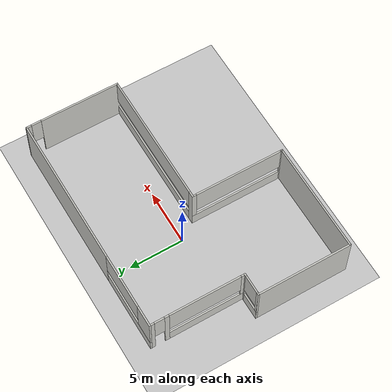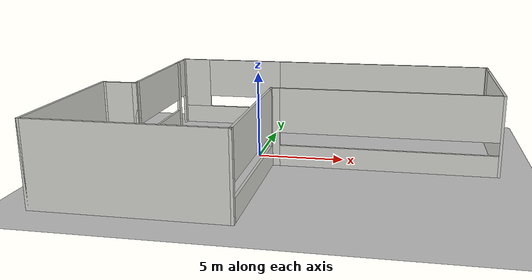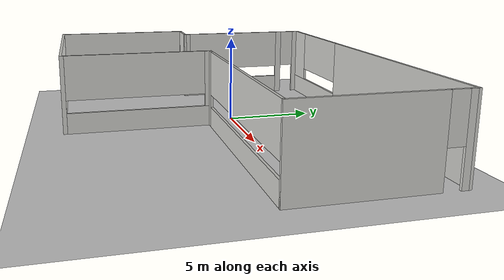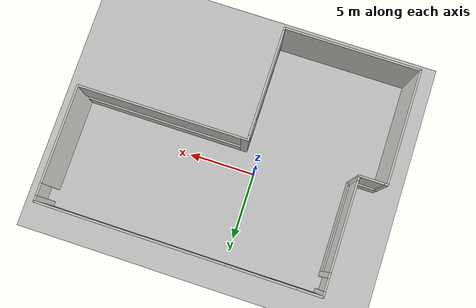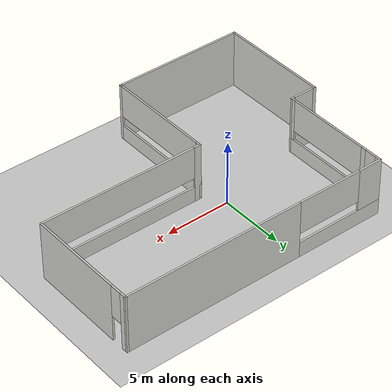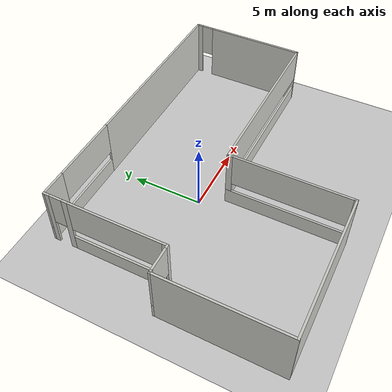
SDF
<sdf version="1.7">
 <world name="default">
  <light name="sun" type="directional">
   <pose>0 0 10 0 -0 0</pose>
   <diffuse>0.8 0.8 0.8 1</diffuse>
   <specular>0.2 0.2 0.2 1</specular>
   <attenuation>
    <range>1000</range>
    <constant>0.9</constant>
    <linear>0.01</linear>
    <quadratic>0.001</quadratic>
   </attenuation>
   <direction>-0.5 0.1 -0.9</direction>
   <spot><inner_angle>0</inner_angle><outer_angle>0</outer_angle><falloff>0</falloff></spot>
  </light>
  <model name="ground_plane">
   <static>1</static>
   <link name="link">
    <collision name="collision">
     <geometry><plane><normal>0 0 1</normal><size>100 100</size></plane></geometry>
     <surface>
      <contact><collide_bitmask>65535</collide_bitmask></contact>
      <friction><ode><mu>100</mu><mu2>50</mu2></ode></friction>
     </surface>
    </collision>
    <visual name="visual">
     <cast_shadows>0</cast_shadows>
     <geometry><plane><normal>0 0 1</normal><size>100 100</size></plane></geometry>
     <material>
      <script><uri>file://media/materials/scripts/gazebo.material</uri><name>Gazebo/Grey</name></script>
     </material>
    </visual>
   </link>
  </model>
  <gravity>0 0 -9.8</gravity>
  <magnetic_field>6e-06 2.3e-05 -4.2e-05</magnetic_field>
  <atmosphere type="adiabatic"/>
  <physics type="ode">
   <max_step_size>0.001</max_step_size>
   <real_time_factor>1</real_time_factor>
   <real_time_update_rate>1000</real_time_update_rate>
  </physics>
  <scene><ambient>0.4 0.4 0.4 1</ambient><background>0.7 0.7 0.7 1</background><shadows>1</shadows></scene>
  <spherical_coordinates>
   <surface_model>EARTH_WGS84</surface_model>
   <latitude_deg>0</latitude_deg>
   <longitude_deg>0</longitude_deg>
   <elevation>0</elevation>
   <heading_deg>0</heading_deg>
  </spherical_coordinates>
  <model name="FAV3">
   <pose>2.33369 -1.55066 0 0 -0 0</pose>
   <link name="Wall_0">
    <pose>5 -0.025 0 0 -0 0</pose>
    <visual name="Wall_0_Visual_0">
     <pose>-6.04835 0 2.25 0 -0 0</pose>
     <geometry><box><size>0.553301 0.15 4.5</size></box></geometry>
     <material>
      <script><uri>file://media/materials/scripts/gazebo.material</uri><name>Gazebo/CeilingTiled</name></script>
      <ambient>0.0823529 0.45098 1 1</ambient>
     </material>
     <meta><layer>0</layer></meta>
    </visual>
    <collision name="Wall_0_Collision_0">
     <geometry><box><size>0.553301 0.15 4.5</size></box></geometry>
     <pose>-6.04835 0 2.25 0 -0 0</pose>
    </collision>
    <visual name="Wall_0_Visual_1">
     <pose>0.27665 0 0.6 0 -0 0</pose>
     <geometry><box><size>12.0967 0.15 1.2</size></box></geometry>
     <material>
      <script><uri>file://media/materials/scripts/gazebo.material</uri><name>Gazebo/CeilingTiled</name></script>
      <ambient>0.0823529 0.45098 1 1</ambient>
     </material>
     <meta><layer>0</layer></meta>
    </visual>
    <collision name="Wall_0_Collision_1">
     <geometry><box><size>12.0967 0.15 1.2</size></box></geometry>
     <pose>0.27665 0 0.6 0 -0 0</pose>
    </collision>
    <visual name="Wall_0_Visual_2">
     <pose>6.27665 0 2.85 0 -0 0</pose>
     <geometry><box><size>0.096699 0.15 3.3</size></box></geometry>
     <material>
      <script><uri>file://media/materials/scripts/gazebo.material</uri><name>Gazebo/CeilingTiled</name></script>
      <ambient>0.0823529 0.45098 1 1</ambient>
     </material>
     <meta><layer>0</layer></meta>
    </visual>
    <collision name="Wall_0_Collision_2">
     <geometry><box><size>0.096699 0.15 3.3</size></box></geometry>
     <pose>6.27665 0 2.85 0 -0 0</pose>
    </collision>
    <visual name="Wall_0_Visual_3">
     <pose>0.228301 0 3.225 0 -0 0</pose>
     <geometry><box><size>12 0.15 2.55</size></box></geometry>
     <material>
      <script><uri>file://media/materials/scripts/gazebo.material</uri><name>Gazebo/CeilingTiled</name></script>
      <ambient>0.0823529 0.45098 1 1</ambient>
     </material>
     <meta><layer>0</layer></meta>
    </visual>
    <collision name="Wall_0_Collision_3">
     <geometry><box><size>12 0.15 2.55</size></box></geometry>
     <pose>0.228301 0 3.225 0 -0 0</pose>
    </collision>
   </link>
   <link name="Wall_1">
    <pose>11.25 4.25 0 0 -0 1.5708</pose>
    <visual name="Wall_1_Visual_0">
     <pose>-0.703876 0 2.25 0 -0 0</pose>
     <geometry><box><size>7.29225 0.15 4.5</size></box></geometry>
     <material>
      <script><uri>file://media/materials/scripts/gazebo.material</uri><name>Gazebo/CeilingTiled</name></script>
      <ambient>0.0823529 0.45098 1 1</ambient>
     </material>
     <meta><layer>0</layer></meta>
    </visual>
    <collision name="Wall_1_Collision_0">
     <geometry><box><size>7.29225 0.15 4.5</size></box></geometry>
     <pose>-0.703876 0 2.25 0 -0 0</pose>
    </collision>
    <visual name="Wall_1_Visual_1">
     <pose>4.09612 0 2.25 0 -0 0</pose>
     <geometry><box><size>0.507752 0.15 4.5</size></box></geometry>
     <material>
      <script><uri>file://media/materials/scripts/gazebo.material</uri><name>Gazebo/CeilingTiled</name></script>
      <ambient>0.0823529 0.45098 1 1</ambient>
     </material>
     <meta><layer>0</layer></meta>
    </visual>
    <collision name="Wall_1_Collision_1">
     <geometry><box><size>0.507752 0.15 4.5</size></box></geometry>
     <pose>4.09612 0 2.25 0 -0 0</pose>
    </collision>
    <visual name="Wall_1_Visual_2">
     <pose>3.39225 0 3.25 0 -0 0</pose>
     <geometry><box><size>0.9 0.15 2.5</size></box></geometry>
     <material>
      <script><uri>file://media/materials/scripts/gazebo.material</uri><name>Gazebo/CeilingTiled</name></script>
      <ambient>0.0823529 0.45098 1 1</ambient>
     </material>
     <meta><layer>0</layer></meta>
    </visual>
    <collision name="Wall_1_Collision_2">
     <geometry><box><size>0.9 0.15 2.5</size></box></geometry>
     <pose>3.39225 0 3.25 0 -0 0</pose>
    </collision>
   </link>
   <link name="Wall_10">
    <collision name="Wall_10_Collision">
     <geometry><box><size>10.15 0.15 4.5</size></box></geometry>
     <pose>0 0 2.25 0 -0 0</pose>
    </collision>
    <visual name="Wall_10_Visual">
     <pose>0 0 2.25 0 -0 0</pose>
     <geometry><box><size>10.15 0.15 4.5</size></box></geometry>
     <material>
      <script><uri>file://media/materials/scripts/gazebo.material</uri><name>Gazebo/CeilingTiled</name></script>
      <ambient>0.0823529 0.45098 1 1</ambient>
     </material>
     <meta><layer>0</layer></meta>
    </visual>
    <pose>-6.25 -8.525 0 0 -0 0</pose>
   </link>
   <link name="Wall_2">
    <pose>1 8.525 0 0 -0 3.14159</pose>
    <visual name="Wall_2_Visual_0">
     <pose>-3.44839 0 2.25 0 -0 0</pose>
     <geometry><box><size>13.7532 0.15 4.5</size></box></geometry>
     <material>
      <script><uri>file://media/materials/scripts/gazebo.material</uri><name>Gazebo/CeilingTiled</name></script>
      <ambient>0.0823529 0.45098 1 1</ambient>
     </material>
     <meta><layer>0</layer></meta>
    </visual>
    <collision name="Wall_2_Collision_0">
     <geometry><box><size>13.7532 0.15 4.5</size></box></geometry>
     <pose>-3.44839 0 2.25 0 -0 0</pose>
    </collision>
    <visual name="Wall_2_Visual_1">
     <pose>6.87661 0 0.6 0 -0 0</pose>
     <geometry><box><size>6.89678 0.15 1.2</size></box></geometry>
     <material>
      <script><uri>file://media/materials/scripts/gazebo.material</uri><name>Gazebo/CeilingTiled</name></script>
      <ambient>0.0823529 0.45098 1 1</ambient>
     </material>
     <meta><layer>0</layer></meta>
    </visual>
    <collision name="Wall_2_Collision_1">
     <geometry><box><size>6.89678 0.15 1.2</size></box></geometry>
     <pose>6.87661 0 0.6 0 -0 0</pose>
    </collision>
    <visual name="Wall_2_Visual_2">
     <pose>9.37661 0 2.85 0 -0 0</pose>
     <geometry><box><size>1.89678 0.15 3.3</size></box></geometry>
     <material>
      <script><uri>file://media/materials/scripts/gazebo.material</uri><name>Gazebo/CeilingTiled</name></script>
      <ambient>0.0823529 0.45098 1 1</ambient>
     </material>
     <meta><layer>0</layer></meta>
    </visual>
    <collision name="Wall_2_Collision_2">
     <geometry><box><size>1.89678 0.15 3.3</size></box></geometry>
     <pose>9.37661 0 2.85 0 -0 0</pose>
    </collision>
    <visual name="Wall_2_Visual_3">
     <pose>5.92822 0 3.225 0 -0 0</pose>
     <geometry><box><size>5 0.15 2.55</size></box></geometry>
     <material>
      <script><uri>file://media/materials/scripts/gazebo.material</uri><name>Gazebo/CeilingTiled</name></script>
      <ambient>0.0823529 0.45098 1 1</ambient>
     </material>
     <meta><layer>0</layer></meta>
    </visual>
    <collision name="Wall_2_Collision_3">
     <geometry><box><size>5 0.15 2.55</size></box></geometry>
     <pose>5.92822 0 3.225 0 -0 0</pose>
    </collision>
   </link>
   <link name="Wall_3">
    <pose>-9.25 4.25 0 0 -0 -1.5708</pose>
    <visual name="Wall_3_Visual_0">
     <pose>-4.11351 0 2.25 0 -0 0</pose>
     <geometry><box><size>0.472969 0.15 4.5</size></box></geometry>
     <material>
      <script><uri>file://media/materials/scripts/gazebo.material</uri><name>Gazebo/CeilingTiled</name></script>
      <ambient>0.0823529 0.45098 1 1</ambient>
     </material>
     <meta><layer>0</layer></meta>
    </visual>
    <collision name="Wall_3_Collision_0">
     <geometry><box><size>0.472969 0.15 4.5</size></box></geometry>
     <pose>-4.11351 0 2.25 0 -0 0</pose>
    </collision>
    <visual name="Wall_3_Visual_1">
     <pose>-2.77486 0 2.25 0 -0 0</pose>
     <geometry><box><size>0.404348 0.15 4.5</size></box></geometry>
     <material>
      <script><uri>file://media/materials/scripts/gazebo.material</uri><name>Gazebo/CeilingTiled</name></script>
      <ambient>0.0823529 0.45098 1 1</ambient>
     </material>
     <meta><layer>0</layer></meta>
    </visual>
    <collision name="Wall_3_Collision_1">
     <geometry><box><size>0.404348 0.15 4.5</size></box></geometry>
     <pose>-2.77486 0 2.25 0 -0 0</pose>
    </collision>
    <visual name="Wall_3_Visual_2">
     <pose>0.888659 0 0.6 0 -0 0</pose>
     <geometry><box><size>6.92268 0.15 1.2</size></box></geometry>
     <material>
      <script><uri>file://media/materials/scripts/gazebo.material</uri><name>Gazebo/CeilingTiled</name></script>
      <ambient>0.0823529 0.45098 1 1</ambient>
     </material>
     <meta><layer>0</layer></meta>
    </visual>
    <collision name="Wall_3_Collision_2">
     <geometry><box><size>6.92268 0.15 1.2</size></box></geometry>
     <pose>0.888659 0 0.6 0 -0 0</pose>
    </collision>
    <visual name="Wall_3_Visual_3">
     <pose>4.13866 0 2.85 0 -0 0</pose>
     <geometry><box><size>0.422683 0.15 3.3</size></box></geometry>
     <material>
      <script><uri>file://media/materials/scripts/gazebo.material</uri><name>Gazebo/CeilingTiled</name></script>
      <ambient>0.0823529 0.45098 1 1</ambient>
     </material>
     <meta><layer>0</layer></meta>
    </visual>
    <collision name="Wall_3_Collision_3">
     <geometry><box><size>0.422683 0.15 3.3</size></box></geometry>
     <pose>4.13866 0 2.85 0 -0 0</pose>
    </collision>
    <visual name="Wall_3_Visual_4">
     <pose>0.677317 0 3.225 0 -0 0</pose>
     <geometry><box><size>6.5 0.15 2.55</size></box></geometry>
     <material>
      <script><uri>file://media/materials/scripts/gazebo.material</uri><name>Gazebo/CeilingTiled</name></script>
      <ambient>0.0823529 0.45098 1 1</ambient>
     </material>
     <meta><layer>0</layer></meta>
    </visual>
    <collision name="Wall_3_Collision_4">
     <geometry><box><size>6.5 0.15 2.55</size></box></geometry>
     <pose>0.677317 0 3.225 0 -0 0</pose>
    </collision>
    <visual name="Wall_3_Visual_5">
     <pose>-3.42703 0 3.25 0 -0 0</pose>
     <geometry><box><size>0.9 0.15 2.5</size></box></geometry>
     <material>
      <script><uri>file://media/materials/scripts/gazebo.material</uri><name>Gazebo/CeilingTiled</name></script>
      <ambient>0.0823529 0.45098 1 1</ambient>
     </material>
     <meta><layer>0</layer></meta>
    </visual>
    <collision name="Wall_3_Collision_5">
     <geometry><box><size>0.9 0.15 2.5</size></box></geometry>
     <pose>-3.42703 0 3.25 0 -0 0</pose>
    </collision>
   </link>
   <link name="Wall_4">
    <pose>-10.25 -0.025 0 0 -0 3.14159</pose>
    <visual name="Wall_4_Visual_0">
     <pose>-0.93752 0 2.25 0 -0 0</pose>
     <geometry><box><size>0.27496 0.15 4.5</size></box></geometry>
     <material>
      <script><uri>file://media/materials/scripts/gazebo.material</uri><name>Gazebo/CeilingTiled</name></script>
      <ambient>0.0823529 0.45098 1 1</ambient>
     </material>
     <meta><layer>0</layer></meta>
    </visual>
    <collision name="Wall_4_Collision_0">
     <geometry><box><size>0.27496 0.15 4.5</size></box></geometry>
     <pose>-0.93752 0 2.25 0 -0 0</pose>
    </collision>
    <visual name="Wall_4_Visual_1">
     <pose>0.13748 0 0.6 0 -0 0</pose>
     <geometry><box><size>1.87504 0.15 1.2</size></box></geometry>
     <material>
      <script><uri>file://media/materials/scripts/gazebo.material</uri><name>Gazebo/CeilingTiled</name></script>
      <ambient>0.0823529 0.45098 1 1</ambient>
     </material>
     <meta><layer>0</layer></meta>
    </visual>
    <collision name="Wall_4_Collision_1">
     <geometry><box><size>1.87504 0.15 1.2</size></box></geometry>
     <pose>0.13748 0 0.6 0 -0 0</pose>
    </collision>
    <visual name="Wall_4_Visual_2">
     <pose>0.93748 0 2.85 0 -0 0</pose>
     <geometry><box><size>0.27504 0.15 3.3</size></box></geometry>
     <material>
      <script><uri>file://media/materials/scripts/gazebo.material</uri><name>Gazebo/CeilingTiled</name></script>
      <ambient>0.0823529 0.45098 1 1</ambient>
     </material>
     <meta><layer>0</layer></meta>
    </visual>
    <collision name="Wall_4_Collision_2">
     <geometry><box><size>0.27504 0.15 3.3</size></box></geometry>
     <pose>0.93748 0 2.85 0 -0 0</pose>
    </collision>
    <visual name="Wall_4_Visual_3">
     <pose>-4e-05 0 3.225 0 -0 0</pose>
     <geometry><box><size>1.6 0.15 2.55</size></box></geometry>
     <material>
      <script><uri>file://media/materials/scripts/gazebo.material</uri><name>Gazebo/CeilingTiled</name></script>
      <ambient>0.0823529 0.45098 1 1</ambient>
     </material>
     <meta><layer>0</layer></meta>
    </visual>
    <collision name="Wall_4_Collision_3">
     <geometry><box><size>1.6 0.15 2.55</size></box></geometry>
     <pose>-4e-05 0 3.225 0 -0 0</pose>
    </collision>
   </link>
   <link name="Wall_7">
    <pose>-1.25 -4.275 0 0 -0 1.5708</pose>
    <visual name="Wall_7_Visual_0">
     <pose>-4.20388 0 2.25 0 -0 0</pose>
     <geometry><box><size>0.242248 0.15 4.5</size></box></geometry>
     <material>
      <script><uri>file://media/materials/scripts/gazebo.material</uri><name>Gazebo/CeilingTiled</name></script>
      <ambient>0.0823529 0.45098 1 1</ambient>
     </material>
     <meta><layer>0</layer></meta>
    </visual>
    <collision name="Wall_7_Collision_0">
     <geometry><box><size>0.242248 0.15 4.5</size></box></geometry>
     <pose>-4.20388 0 2.25 0 -0 0</pose>
    </collision>
    <visual name="Wall_7_Visual_1">
     <pose>0.121124 0 0.6 0 -0 0</pose>
     <geometry><box><size>8.40775 0.15 1.2</size></box></geometry>
     <material>
      <script><uri>file://media/materials/scripts/gazebo.material</uri><name>Gazebo/CeilingTiled</name></script>
      <ambient>0.0823529 0.45098 1 1</ambient>
     </material>
     <meta><layer>0</layer></meta>
    </visual>
    <collision name="Wall_7_Collision_1">
     <geometry><box><size>8.40775 0.15 1.2</size></box></geometry>
     <pose>0.121124 0 0.6 0 -0 0</pose>
    </collision>
    <visual name="Wall_7_Visual_2">
     <pose>4.12112 0 2.85 0 -0 0</pose>
     <geometry><box><size>0.407752 0.15 3.3</size></box></geometry>
     <material>
      <script><uri>file://media/materials/scripts/gazebo.material</uri><name>Gazebo/CeilingTiled</name></script>
      <ambient>0.0823529 0.45098 1 1</ambient>
     </material>
     <meta><layer>0</layer></meta>
    </visual>
    <collision name="Wall_7_Collision_2">
     <geometry><box><size>0.407752 0.15 3.3</size></box></geometry>
     <pose>4.12112 0 2.85 0 -0 0</pose>
    </collision>
    <visual name="Wall_7_Visual_3">
     <pose>-0.082752 0 3.225 0 -0 0</pose>
     <geometry><box><size>8 0.15 2.55</size></box></geometry>
     <material>
      <script><uri>file://media/materials/scripts/gazebo.material</uri><name>Gazebo/CeilingTiled</name></script>
      <ambient>0.0823529 0.45098 1 1</ambient>
     </material>
     <meta><layer>0</layer></meta>
    </visual>
    <collision name="Wall_7_Collision_3">
     <geometry><box><size>8 0.15 2.55</size></box></geometry>
     <pose>-0.082752 0 3.225 0 -0 0</pose>
    </collision>
   </link>
   <link name="Wall_9">
    <collision name="Wall_9_Collision">
     <geometry><box><size>8.65 0.15 4.5</size></box></geometry>
     <pose>0 0 2.25 0 -0 0</pose>
    </collision>
    <visual name="Wall_9_Visual">
     <pose>0 0 2.25 0 -0 0</pose>
     <geometry><box><size>8.65 0.15 4.5</size></box></geometry>
     <material>
      <script><uri>file://media/materials/scripts/gazebo.material</uri><name>Gazebo/CeilingTiled</name></script>
      <ambient>0.0823529 0.45098 1 1</ambient>
     </material>
     <meta><layer>0</layer></meta>
    </visual>
    <pose>-11.25 -4.275 0 0 -0 -1.5708</pose>
   </link>
   <static>1</static>
  </model>
 </world>
</sdf>
